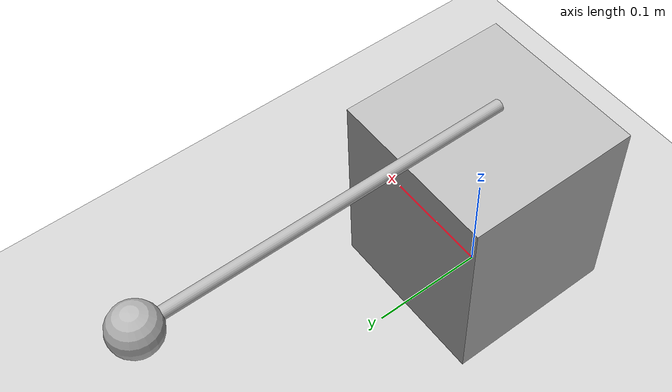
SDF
<?xml version="1.0" ?>
<sdf version="1.6">
  <world name="Servo">
    <include>
      <uri>model://sun</uri>
    </include>
    <include>
      <uri>model://ground_plane</uri>
    </include>

    <model name="Servo">
      <include>
        <uri>model://servo</uri>
      </include>
    </model>
  </world>
</sdf>

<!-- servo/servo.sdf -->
<sdf version="1.6">
  <model name="servo">
    <static>false</static>

    <link name="base">
      <pose>0.0 0.0 0.09 0.0 0.0 0.0</pose>

      <collision name="base_col">
        <geometry>
          <box>
            <size>0.15 0.15 0.18</size>
          </box>
        </geometry>
      </collision>

      <visual name="base_viz">
        <geometry>
          <box>
            <size>0.15 0.15 0.18</size>
          </box>
        </geometry>
      </visual>

      <inertial>
        <mass>1.2</mass>
        <inertia>
          <ixx>0.0055</ixx>
          <ixy>0.0</ixy>
          <ixz>0.0</ixz>
          <iyy>0.0055</iyy>
          <iyz>0.0</iyz>
          <izz>0.0045</izz>
        </inertia>
      </inertial>
    </link>

    <link name="arm">
      <pose>0.0 0.14 0.1925 1.5708 0.0 0.0</pose>

      <collision name="arm_col">
        <geometry>
          <cylinder>
            <radius>0.005</radius>
            <length>0.3</length>
          </cylinder>
        </geometry>
      </collision>

      <visual name="arm_viz">
        <geometry>
          <cylinder>
            <radius>0.005</radius>
            <length>0.3</length>
          </cylinder>
        </geometry>
      </visual>

      <inertial>
        <mass>0.015</mass>
        <inertia>
          <ixx>0.000125</ixx>
          <ixy>0.0</ixy>
          <ixz>0.0</ixz>
          <iyy>0.000125</iyy>
          <iyz>0.0</iyz>
          <izz>0.0000001875</izz>
        </inertia>
      </inertial>
    </link>

    <link name="weight">
      <pose>0.0 0.3 0.1925 0.0 0.0 0.0</pose>

      <collision name="weight_col">
        <geometry>
          <sphere>
            <radius>0.02</radius>
          </sphere>
        </geometry>
      </collision>

      <visual name="weight_viz">
        <geometry>
          <sphere>
            <radius>0.02</radius>
          </sphere>
        </geometry>
      </visual>

      <inertial>
        <mass>0.25</mass>
        <inertia>
          <ixx>0.00006667</ixx>
          <ixy>0.0</ixy>
          <ixz>0.0</ixz>
          <iyy>0.00006667</iyy>
          <iyz>0.0</iyz>
          <izz>0.00006667</izz>
        </inertia>
      </inertial>
    </link>

    <joint type="fixed" name="grounding">
      <parent>world</parent>
      <child>base</child>
    </joint>
    <joint type="revolute" name="arm_hinge">
      <pose>0.0 0.0 0.14 0.0 0.0 0.0</pose>
      <parent>base</parent>
      <child>arm</child>
      <axis>
        <xyz>0 1 0</xyz>
      </axis>
    </joint>
    <joint type="fixed" name="weight_attachment">
      <parent>arm</parent>
      <child>weight</child>
    </joint>
  </model>
</sdf>
